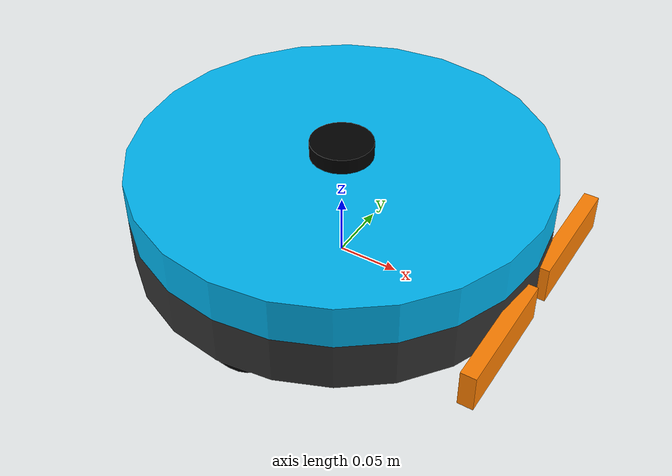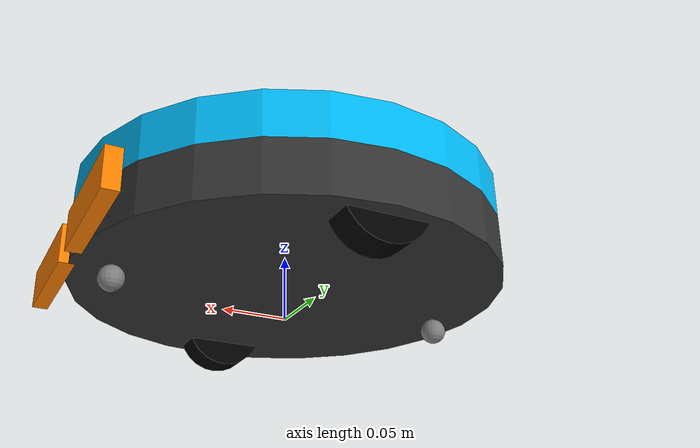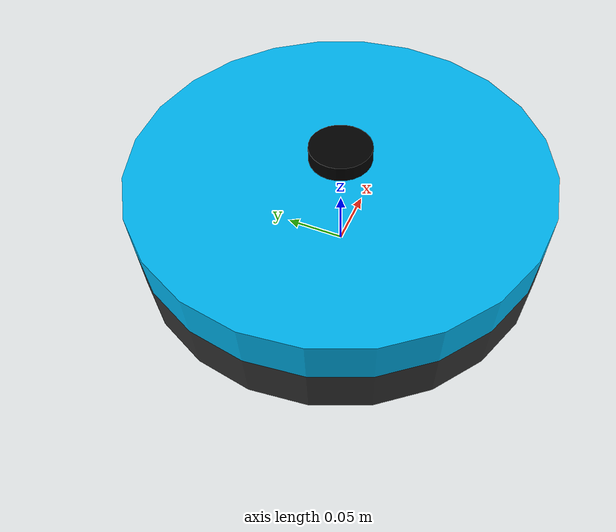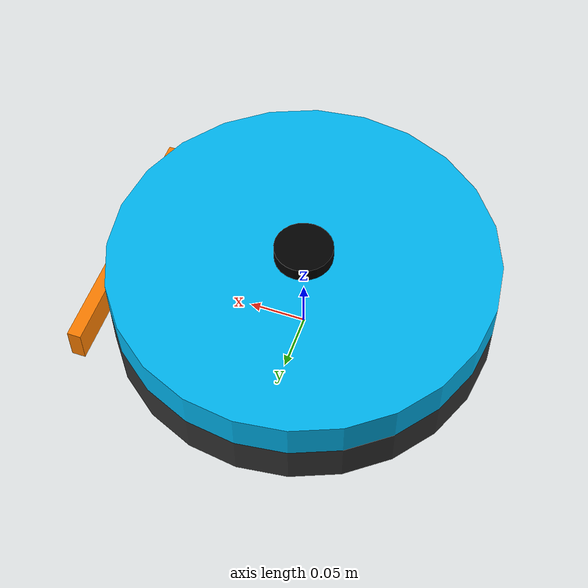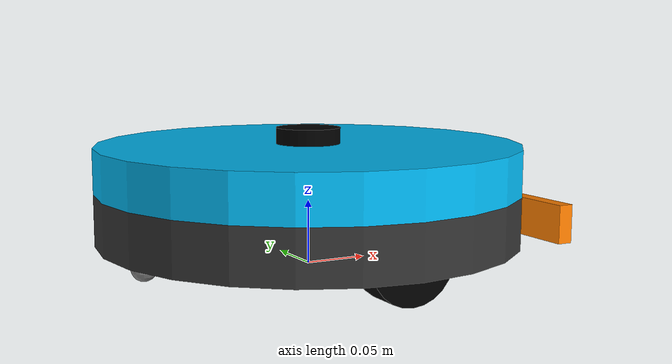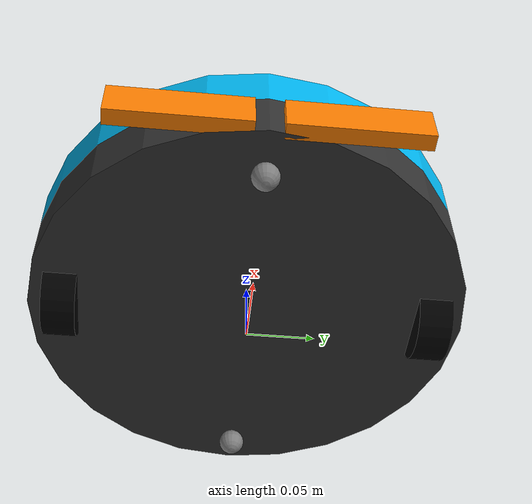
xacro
<?xml version="1.0" ?>
<robot name="oomwoo" xmlns:xacro="http://ros.org/wiki/xacro">
  <xacro:include filename="params.xacro"/>
  <xacro:include filename="inertial.xacro"/>
  <xacro:include filename="materials.xacro"/>
  <xacro:include filename="plugins.xacro"/>

  <link name="base_footprint"/>

  <joint name="base_joint" type="fixed">
    <parent link="base_footprint"/>
    <child link="base_link"/>
    <origin xyz="0 0 ${floor_clearance}" rpy="0 0 0"/>
  </joint>

  <link name="base_link">
    <visual>
      <origin xyz="0 0 ${base_height/2}" rpy="0 0 0"/>
      <geometry>
        <cylinder length="${base_height}" radius="${base_diameter/2}"/>
      </geometry>
      <material name="dark_grey"/>
    </visual>
    <collision>
      <origin xyz="0 0 ${base_height/2}" rpy="0 0 0"/>
      <geometry>
        <cylinder length="${base_height}" radius="${base_diameter/2}"/>
      </geometry>
    </collision>
    <xacro:solid_cylinder_inertia m="${base_mass}" r="${base_diameter/2}" h="${base_height}"/>
  </link>

  <joint name="top_joint" type="fixed">
    <parent link="base_link"/>
    <child link="top_link"/>
    <origin xyz="0 0 ${base_height}" rpy="0 0 0"/>
  </joint>

  <link name="top_link">
    <visual>
      <origin xyz="0 0 ${top_height/2}" rpy="0 0 0"/>
      <geometry>
        <cylinder length="${top_height}" radius="${base_diameter/2}"/>
      </geometry>
      <material name="cyan"/>
    </visual>
    <collision>
      <origin xyz="0 0 ${top_height/2}" rpy="0 0 0"/>
      <geometry>
        <cylinder length="${top_height}" radius="${base_diameter/2}"/>
      </geometry>
    </collision>
    <xacro:solid_cylinder_inertia m="${top_mass}" r="${base_diameter/2}" h="${top_height}"/>
  </link>

  <joint name="caster_joint" type="fixed">
    <parent link="base_link"/>
    <child link="caster_link"/>
    <origin xyz="${caster_inset - base_diameter/2} 0 ${caster_diameter/2 - floor_clearance}" rpy="0 0 0"/>
  </joint>

  <link name="caster_link">
    <visual>
      <geometry>
        <sphere radius="${caster_diameter/2}"/>
      </geometry>
      <material name="grey"/>
    </visual>
    <collision>
      <geometry>
        <sphere radius="${caster_diameter/2}"/>
      </geometry>
    </collision>
    <xacro:solid_sphere_inertia m="${caster_mass}" r="${caster_diameter/2}"/>
  </link>

  <joint name="caster_front_joint" type="fixed">
    <parent link="base_link"/>
    <child link="caster_front_link"/>
    <origin xyz="${base_diameter/2 - caster_inset} 0 ${caster_diameter/2 - floor_clearance}" rpy="0 0 0"/>
  </joint>

  <link name="caster_front_link">
    <visual>
      <geometry>
        <sphere radius="${caster_diameter/2}"/>
      </geometry>
      <material name="grey"/>
    </visual>
    <collision>
      <geometry>
        <sphere radius="${caster_diameter/2}"/>
      </geometry>
    </collision>
    <xacro:solid_sphere_inertia m="${caster_mass}" r="${caster_diameter/2}"/>
  </link>

  <joint name="wheel_left_joint" type="continuous">
    <parent link="base_link"/>
    <child link="wheel_left_link"/>
    <origin xyz="0 ${wheel_base/2} ${wheel_diameter/2 - floor_clearance}" rpy="-${pi/2} 0 0"/>
    <axis xyz="0 0 1"/>
    <limit effort="${motor_stall_torque}" velocity="20.0"/>
  </joint>

  <link name="wheel_left_link">
    <visual>
      <geometry>
        <cylinder length="${wheel_width}" radius="${wheel_diameter/2}"/>
      </geometry>
      <material name="black"/>
    </visual>
    <collision>
      <geometry>
        <cylinder length="${wheel_width}" radius="${wheel_diameter/2}"/>
      </geometry>
    </collision>
    <xacro:solid_cylinder_inertia m="${wheel_mass}" r="${wheel_diameter/2}" h="${wheel_width}"/>
  </link>

  <joint name="wheel_right_joint" type="continuous">
    <parent link="base_link"/>
    <child link="wheel_right_link"/>
    <origin xyz="0 ${-wheel_base/2} ${wheel_diameter/2 - floor_clearance}" rpy="-${pi/2} 0 0"/>
    <axis xyz="0 0 1"/>
    <limit effort="${motor_stall_torque}" velocity="20.0"/>
  </joint>

  <link name="wheel_right_link">
    <visual>
      <geometry>
        <cylinder length="${wheel_width}" radius="${wheel_diameter/2}"/>
      </geometry>
      <material name="black"/>
    </visual>
    <collision>
      <geometry>
        <cylinder length="${wheel_width}" radius="${wheel_diameter/2}"/>
      </geometry>
    </collision>
    <xacro:solid_cylinder_inertia m="${wheel_mass}" r="${wheel_diameter/2}" h="${wheel_width}"/>
  </link>

  <joint name="scan_joint" type="fixed">
    <parent link="base_link"/>
    <child link="base_scan"/>
    <origin xyz="0 0 ${lidar_z_offset}" rpy="0 0 0"/>
  </joint>

  <link name="base_scan">
    <visual>
      <origin xyz="0 0 0" rpy="0 0 0"/>
      <geometry>
        <cylinder length="${lidar_height}" radius="${lidar_diameter/2}"/>
      </geometry>
      <material name="black"/>
    </visual>
    <collision>
      <origin xyz="0 0 0" rpy="0 0 0"/>
      <geometry>
        <cylinder length="${lidar_height}" radius="${lidar_diameter/2}"/>
      </geometry>
    </collision>
    <xacro:solid_cylinder_inertia m="${lidar_mass}" r="${lidar_diameter/2}" h="${lidar_height}"/>
  </link>

  <joint name="bumper_left_joint" type="fixed">
    <parent link="base_link"/>
    <child link="bumper_left_link"/>
    <origin xyz="${base_diameter/2} ${bumper_width/2 + 0.01} ${bumper_height/2}" rpy="0 0 0"/>
  </joint>

  <link name="bumper_left_link">
    <visual>
      <origin xyz="0 0 0" rpy="0 0 0"/>
      <geometry>
        <box size="${bumper_depth} ${bumper_width} ${bumper_height}"/>
      </geometry>
      <material name="orange"/>
    </visual>
    <collision name="bumper_left_collision">
      <origin xyz="0 0 0" rpy="0 0 0"/>
      <geometry>
        <box size="${bumper_depth} ${bumper_width} ${bumper_height}"/>
      </geometry>
    </collision>
    <xacro:solid_box_inertia m="${bumper_mass/2}" x="${bumper_depth}" y="${bumper_width}" z="${bumper_height}"/>
  </link>

  <joint name="bumper_right_joint" type="fixed">
    <parent link="base_link"/>
    <child link="bumper_right_link"/>
    <origin xyz="${base_diameter/2} ${-bumper_width/2 - 0.01} ${bumper_height/2}" rpy="0 0 0"/>
  </joint>

  <link name="bumper_right_link">
    <visual>
      <origin xyz="0 0 0" rpy="0 0 0"/>
      <geometry>
        <box size="${bumper_depth} ${bumper_width} ${bumper_height}"/>
      </geometry>
      <material name="orange"/>
    </visual>
    <collision name="bumper_right_collision">
      <origin xyz="0 0 0" rpy="0 0 0"/>
      <geometry>
        <box size="${bumper_depth} ${bumper_width} ${bumper_height}"/>
      </geometry>
    </collision>
    <xacro:solid_box_inertia m="${bumper_mass/2}" x="${bumper_depth}" y="${bumper_width}" z="${bumper_height}"/>
  </link>

  <gazebo reference="base_link">
    <visual>
      <material>
        <ambient>0.15 0.15 0.15 1.0</ambient>
        <diffuse>0.2 0.2 0.2 1.0</diffuse>
        <specular>0.2 0.2 0.2 1.0</specular>
      </material>
    </visual>
  </gazebo>

  <gazebo reference="top_link">
    <visual>
      <material>
        <ambient>0.0 0.5 0.8 1.0</ambient>
        <diffuse>0.0 0.72 0.95 1.0</diffuse>
        <specular>0.4 0.4 0.4 1.0</specular>
      </material>
    </visual>
  </gazebo>

  <gazebo reference="base_scan">
    <visual>
      <material>
        <ambient>0.05 0.05 0.05 1.0</ambient>
        <diffuse>0.1 0.1 0.1 1.0</diffuse>
        <specular>0.8 0.8 0.8 1.0</specular>
      </material>
    </visual>
  </gazebo>

  <gazebo reference="caster_link">
    <mu1>0.001</mu1>
    <mu2>0.001</mu2>
  </gazebo>

  <gazebo reference="caster_front_link">
    <mu1>0.001</mu1>
    <mu2>0.001</mu2>
  </gazebo>

  <gazebo reference="wheel_left_link">
    <visual>
      <material>
        <ambient>0.1 0.1 0.1 1.0</ambient>
        <diffuse>0.15 0.15 0.15 1.0</diffuse>
      </material>
    </visual>
    <mu1>1.0</mu1>
    <mu2>1.0</mu2>
  </gazebo>

  <gazebo reference="wheel_right_link">
    <visual>
      <material>
        <ambient>0.1 0.1 0.1 1.0</ambient>
        <diffuse>0.15 0.15 0.15 1.0</diffuse>
      </material>
    </visual>
    <mu1>1.0</mu1>
    <mu2>1.0</mu2>
  </gazebo>

  <gazebo reference="bumper_left_link">
    <visual>
      <material>
        <ambient>0.9 0.4 0.0 1.0</ambient>
        <diffuse>1.0 0.5 0.0 1.0</diffuse>
      </material>
    </visual>
    <self_collide>false</self_collide>
  </gazebo>

  <gazebo reference="bumper_right_link">
    <visual>
      <material>
        <ambient>0.9 0.4 0.0 1.0</ambient>
        <diffuse>1.0 0.5 0.0 1.0</diffuse>
      </material>
    </visual>
    <self_collide>false</self_collide>
  </gazebo>
</robot>

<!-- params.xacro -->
<robot xmlns:xacro="http://ros.org/wiki/xacro">

  <xacro:property name="wheel_diameter" value="0.065"/>
  <xacro:property name="wheel_width" value="0.025"/>
  <xacro:property name="wheel_base" value="0.280"/>
  <xacro:property name="wheel_mass" value="0.080"/>

  <xacro:property name="caster_diameter" value="0.020"/>
  <xacro:property name="caster_mass" value="0.020"/>
  <xacro:property name="caster_inset" value="0.030"/>

  <xacro:property name="floor_clearance" value="0.020"/>

  <xacro:property name="base_diameter" value="0.330"/>
  <xacro:property name="base_height" value="0.040"/>
  <xacro:property name="base_mass" value="0.800"/>

  <xacro:property name="top_height" value="0.035"/>
  <xacro:property name="top_mass" value="0.300"/>

  <xacro:property name="lidar_height" value="0.025"/>
  <xacro:property name="lidar_diameter" value="0.050"/>
  <xacro:property name="lidar_mass" value="0.050"/>
  <xacro:property name="lidar_z_offset" value="0.075"/>

  <xacro:property name="bumper_height" value="0.030"/>
  <xacro:property name="bumper_width" value="0.100"/>
  <xacro:property name="bumper_depth" value="0.012"/>
  <xacro:property name="bumper_mass" value="0.020"/>
  <xacro:property name="motor_stall_torque" value="0.5"/>
  <xacro:property name="max_linear_acceleration" value="1.0"/>
</robot>

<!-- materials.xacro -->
<robot xmlns:xacro="http://ros.org/wiki/xacro">
  <material name="black">
    <color rgba="0.0 0.0 0.0 1.0"/>
  </material>

  <material name="dark_grey">
    <color rgba="0.2 0.2 0.2 1.0"/>
  </material>

  <material name="grey">
    <color rgba="0.5 0.5 0.5 1.0"/>
  </material>

  <material name="white">
    <color rgba="0.9 0.9 0.9 1.0"/>
  </material>

  <material name="red">
    <color rgba="0.8 0.0 0.0 1.0"/>
  </material>

  <material name="blue">
    <color rgba="0.0 0.0 0.8 1.0"/>
  </material>

  <material name="orange">
    <color rgba="1.0 0.5 0.0 1.0"/>
  </material>

  <material name="cyan">
    <color rgba="0.0 0.72 0.95 1.0"/>
  </material>

  <gazebo reference="wheel_left_link">
    <mu1>1.0</mu1>
    <mu2>1.0</mu2>
  </gazebo>

  <gazebo reference="wheel_right_link">
    <mu1>1.0</mu1>
    <mu2>1.0</mu2>
  </gazebo>

  <gazebo reference="caster_link">
    <mu1>0.1</mu1>
    <mu2>0.1</mu2>
  </gazebo>
</robot>
